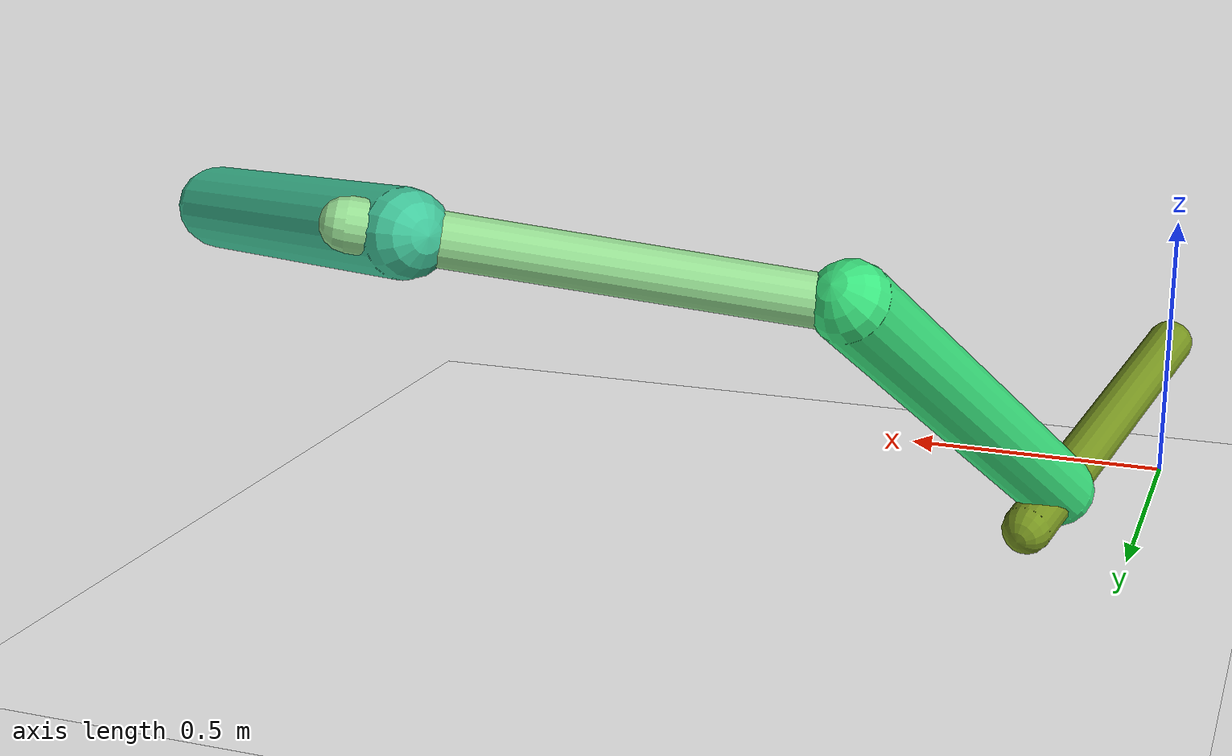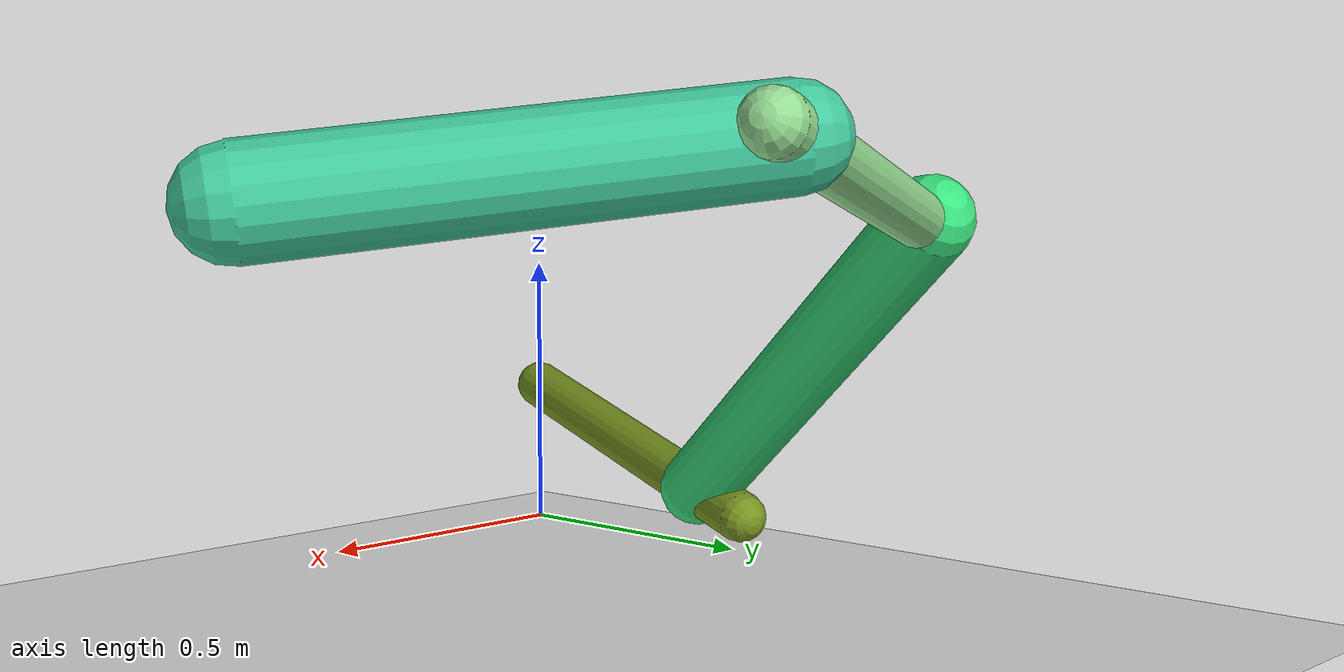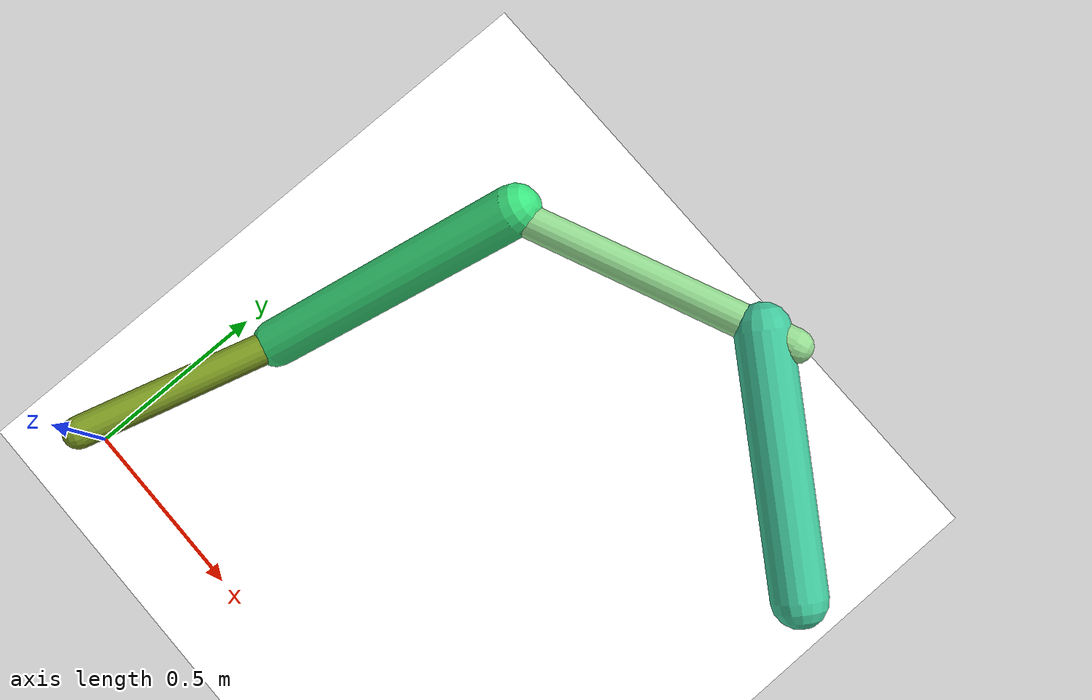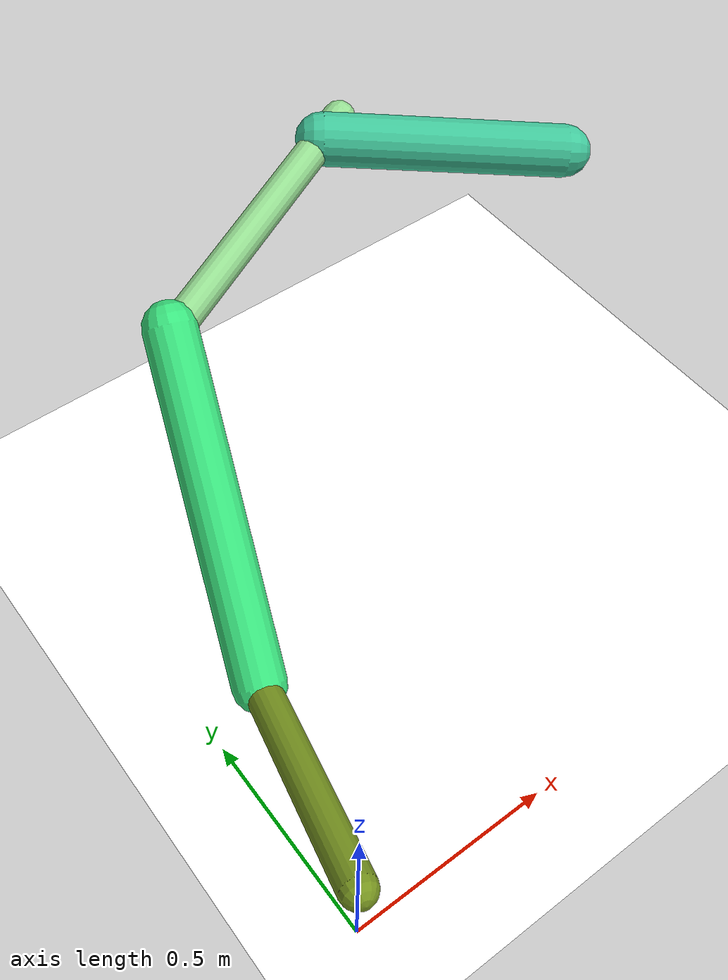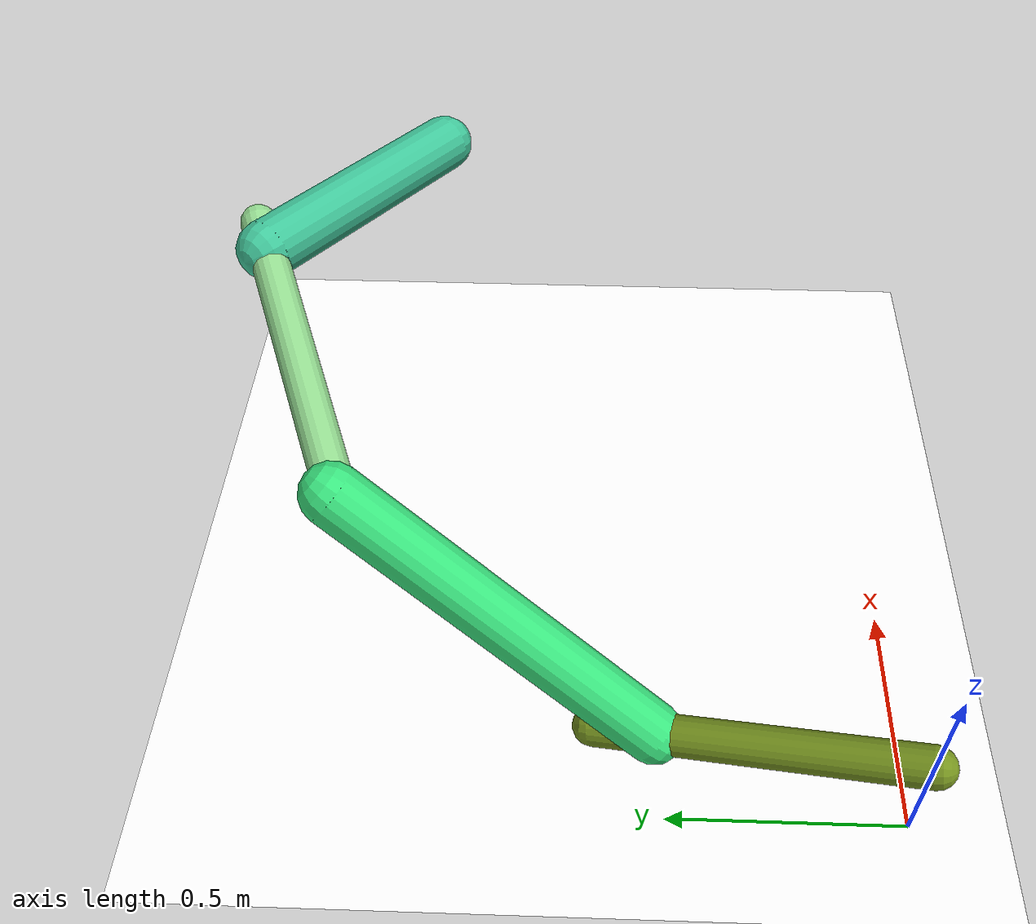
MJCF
<mujoco model="morphology">
  <option timestep="0.01"/>
  <default>
    <default class="/"/>
    <default class="0/"/>
    <default class="0/1/"/>
    <default class="0/1/2/"/>
    <default class="0/1/2/3/"/>
  </default>
  <asset>
    <texture name="texplane" type="2d" builtin="checker" rgb1="0.10000000000000001 0.20000000000000001 0.29999999999999999" rgb2="0.20000000000000001 0.29999999999999999 0.40000000000000002" width="300" height="300"/>
    <material name="MatPlane" class="/" texture="texplane" texrepeat="20 20" specular="1" shininess="1" reflectance="0.5"/>
  </asset>
  <worldbody>
    <light name="//unnamed_light_0" class="/" directional="true" pos="0 0 1.5" dir="0 0 -1.3" cutoff="100" exponent="1" diffuse="1 1 1" specular="0.10000000000000001 0.10000000000000001 0.10000000000000001"/>
    <geom name="ground" class="/" type="plane" size="15 15 0.5" material="MatPlane" rgba="1 1 1 1"/>
    <site name="body" class="/" size="9.9999999999999995e-07 9.9999999999999995e-07 9.9999999999999995e-07" pos="0 0 0.26227792203426359"/>
    <body pos="0 0 0.26227792203426359" name="0/">
      <freejoint name="0/"/>
      <geom name="0/geom" class="0/" type="capsule" contype="1" conaffinity="1" condim="3" size="0.043142279852715501" rgba="0.46395650154913959 0.57982687698865432 0.12230317544235003 1" friction="0.59999999999999998 0.10000000000000001 0.10000000000000001" fromto="0 0 0 0.15419462762628955 0.6502832442746318 -0.16227792777131689"/>
      <site name="0/end0" class="0/" size="0.0050000000000000001" pos="0.15419462762628955 0.6502832442746318 -0.16227792777131689"/>
      <site name="0/attach1" class="0/" size="9.9999999999999995e-07 9.9999999999999995e-07 9.9999999999999995e-07" pos="0.12447366010602204 0.52494134696221639 -0.13099890660958793"/>
      <body pos="0.12447366010602204 0.52494134696221639 -0.13099890660958793" name="0/1/">
        <joint name="0/1/joint/" class="0/" type="hinge" axis="0 1 0" limited="true" range="-54.329529657167257 54.329529657167257"/>
        <geom name="0/1/geom" class="0/1/" type="capsule" contype="1" conaffinity="1" condim="3" size="0.06401696394566718" rgba="0.22475951819336248 0.88954542656079105 0.49371251485226986 1" friction="0.59999999999999998 0.10000000000000001 0.10000000000000001" fromto="0 0 0 0.21688491411312272 0.63041667749924324 0.4831936560732486"/>
        <site name="0/1/end1" class="0/1/" size="0.0050000000000000001" pos="0.21688491411312272 0.63041667749924324 0.4831936560732486"/>
        <site name="0/1/attach2" class="0/1/" size="9.9999999999999995e-07 9.9999999999999995e-07 9.9999999999999995e-07" pos="0.21318027644237117 0.61964845334089724 0.47494016630021874"/>
        <body pos="0.21318027644237117 0.61964845334089724 0.47494016630021874" name="0/1/2/">
          <joint name="0/1/2/joint/" class="0/1/" type="hinge" axis="-0.96468375308304077 0.20906463906279427 0.16024117208496105" limited="true" range="-60.672190566438502 60.672190566438502"/>
          <geom name="0/1/2/geom" class="0/1/2/" type="capsule" contype="1" conaffinity="1" condim="3" size="0.040513306436056322" rgba="0.58082180540099415 0.85960760218418808 0.56602407889586015 1" friction="0.59999999999999998 0.10000000000000001 0.10000000000000001" fromto="0 0 0 0.66210836975406862 0.26142148181714076 0.12746044762385766"/>
          <site name="0/1/2/end2" class="0/1/2/" size="0.0050000000000000001" pos="0.66210836975406862 0.26142148181714076 0.12746044762385766"/>
          <site name="0/1/2/attach3" class="0/1/2/" size="9.9999999999999995e-07 9.9999999999999995e-07 9.9999999999999995e-07" pos="0.58880483178212983 0.23247890927998774 0.11334900878826916"/>
          <body pos="0.58880483178212983 0.23247890927998774 0.11334900878826916" name="0/1/2/3/">
            <joint name="0/1/2/3/joint/" class="0/1/2/" type="hinge" axis="-0.40217245776693877 0.82295714565349232 0.40124662071045109" limited="true" range="-64.352594110318279 64.352594110318279"/>
            <geom name="0/1/2/3/geom" class="0/1/2/3/" type="capsule" contype="1" conaffinity="1" condim="3" size="0.065654279385578357" rgba="0.25249246051301055 0.77841629003499591 0.60612277274351434 1" friction="0.59999999999999998 0.10000000000000001 0.10000000000000001" fromto="0 0 0 0.50747110164159026 -0.32759846398447362 -0.069301195147502881"/>
            <site name="0/1/2/3/end3" class="0/1/2/3/" size="0.0050000000000000001" pos="0.50747110164159026 -0.32759846398447362 -0.069301195147502881"/>
          </body>
        </body>
      </body>
      <camera name="0/iso" class="0/" mode="trackcom" pos="-2.2999999999999998 -2.2999999999999998 1" xyaxes="0.45000000000000001 -0.45000000000000001 0 0.29999999999999999 0.14999999999999999 0.93999999999999995"/>
    </body>
  </worldbody>
  <actuator>
    <motor name="0/1/motor" class="0/1/" ctrllimited="true" ctrlrange="-1 1" gear="98" joint="0/1/joint/"/>
    <motor name="0/1/2/motor" class="0/1/2/" ctrllimited="true" ctrlrange="-1 1" gear="53" joint="0/1/2/joint/"/>
    <motor name="0/1/2/3/motor" class="0/1/2/3/" ctrllimited="true" ctrlrange="-1 1" gear="94" joint="0/1/2/3/joint/"/>
  </actuator>
  <sensor>
    <subtreelinvel name="velocity" body="0/"/>
  </sensor>
</mujoco>
